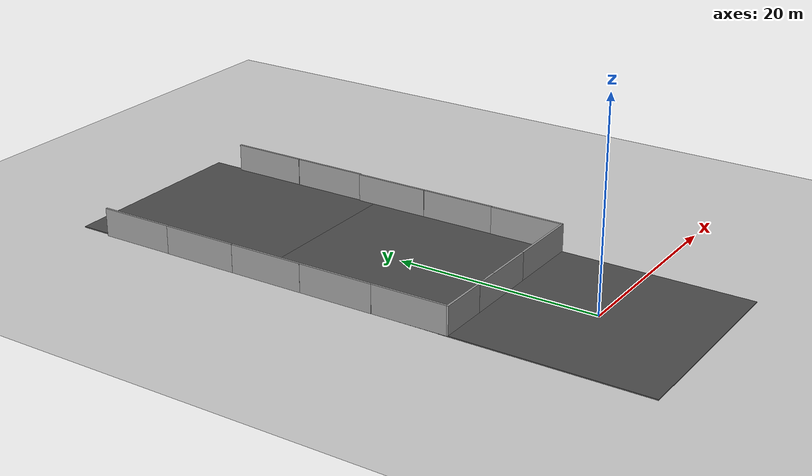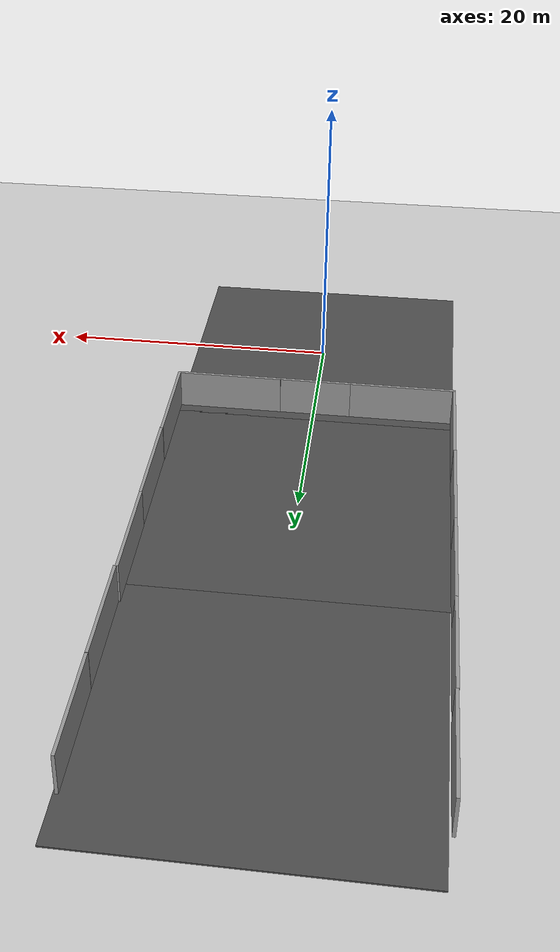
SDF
<sdf version="1.6">
 <world name="default">
  <light name="sun" type="directional">
   <pose>0 0 10 0 -0 0</pose>
   <diffuse>0.8 0.8 0.8 1</diffuse>
   <specular>0.2 0.2 0.2 1</specular>
   <attenuation>
    <range>1000</range>
    <constant>0.9</constant>
    <linear>0.01</linear>
    <quadratic>0.001</quadratic>
   </attenuation>
   <direction>-0.5 0.1 -0.9</direction>
  </light>
  <model name="ground_plane">
   <static>1</static>
   <link name="link">
    <collision name="collision">
     <geometry><plane><normal>0 0 1</normal><size>100 100</size></plane></geometry>
     <surface>
      <contact><collide_bitmask>65535</collide_bitmask></contact>
      <friction><ode><mu>100</mu><mu2>50</mu2></ode></friction>
     </surface>
    </collision>
    <visual name="visual">
     <cast_shadows>0</cast_shadows>
     <geometry><plane><normal>0 0 1</normal><size>100 100</size></plane></geometry>
     <material>
      <script><uri>file://media/materials/scripts/gazebo.material</uri><name>Gazebo/Grey</name></script>
     </material>
    </visual>
   </link>
  </model>
  <gravity>0 0 -9.8</gravity>
  <magnetic_field>6e-06 2.3e-05 -4.2e-05</magnetic_field>
  <atmosphere type="adiabatic"/>
  <physics name="default_physics" default="0" type="ode">
   <max_step_size>0.001</max_step_size>
   <real_time_factor>1</real_time_factor>
   <real_time_update_rate>1000</real_time_update_rate>
  </physics>
  <scene><ambient>0.4 0.4 0.4 1</ambient><background>0.7 0.7 0.7 1</background><shadows>1</shadows></scene>
  <spherical_coordinates>
   <surface_model>EARTH_WGS84</surface_model>
   <latitude_deg>0</latitude_deg>
   <longitude_deg>0</longitude_deg>
   <elevation>0</elevation>
   <heading_deg>0</heading_deg>
  </spherical_coordinates>
  <model name="asphalt_plane">
   <static>1</static>
   <link name="link">
    <collision name="collision"><geometry><box><size>20 20 0.1</size></box></geometry></collision>
    <visual name="visual">
     <cast_shadows>0</cast_shadows>
     <geometry><box><size>20 20 0.1</size></box></geometry>
     <material>
      <script>
       <uri>model://asphalt_plane/materials/scripts</uri>
       <uri>model://asphalt_plane/materials/textures</uri>
       <name>vrc/asphalt</name>
      </script>
     </material>
    </visual>
   </link>
   <pose>-0.120048 -0.200331 0 0 -0 0</pose>
  </model>
  <model name="asphalt_plane_0">
   <static>1</static>
   <link name="link">
    <collision name="collision"><geometry><box><size>20 20 0.1</size></box></geometry></collision>
    <visual name="visual">
     <cast_shadows>0</cast_shadows>
     <geometry><box><size>20 20 0.1</size></box></geometry>
     <material>
      <script>
       <uri>model://asphalt_plane/materials/scripts</uri>
       <uri>model://asphalt_plane/materials/textures</uri>
       <name>vrc/asphalt</name>
      </script>
     </material>
    </visual>
   </link>
   <pose>-0.092431 19.6929 0 0 -0 0</pose>
  </model>
  <model name="asphalt_plane_1">
   <static>1</static>
   <link name="link">
    <collision name="collision"><geometry><box><size>20 20 0.1</size></box></geometry></collision>
    <visual name="visual">
     <cast_shadows>0</cast_shadows>
     <geometry><box><size>20 20 0.1</size></box></geometry>
     <material>
      <script>
       <uri>model://asphalt_plane/materials/scripts</uri>
       <uri>model://asphalt_plane/materials/textures</uri>
       <name>vrc/asphalt</name>
      </script>
     </material>
    </visual>
   </link>
   <pose>-0.074798 39.6242 0 0 -0 0</pose>
  </model>
  <model name="grey_wall">
   <static>1</static>
   <link name="link">
    <pose>0 0 1.4 0 -0 0</pose>
    <collision name="collision"><geometry><box><size>7.5 0.2 2.8</size></box></geometry></collision>
    <visual name="visual">
     <cast_shadows>0</cast_shadows>
     <geometry><box><size>7.5 0.2 2.8</size></box></geometry>
     <material>
      <script>
       <uri>model://grey_wall/materials/scripts</uri>
       <uri>model://grey_wall/materials/textures</uri>
       <name>vrc/grey_wall</name>
      </script>
     </material>
    </visual>
   </link>
   <pose>6.19469 8.86607 0 0 -0 0</pose>
  </model>
  <model name="grey_wall_0">
   <static>1</static>
   <link name="link">
    <pose>0 0 1.4 0 -0 0</pose>
    <collision name="collision"><geometry><box><size>7.5 0.2 2.8</size></box></geometry></collision>
    <visual name="visual">
     <cast_shadows>0</cast_shadows>
     <geometry><box><size>7.5 0.2 2.8</size></box></geometry>
     <material>
      <script>
       <uri>model://grey_wall/materials/scripts</uri>
       <uri>model://grey_wall/materials/textures</uri>
       <name>vrc/grey_wall</name>
      </script>
     </material>
    </visual>
   </link>
   <pose>-1.31209 8.85435 0 0 -0 0</pose>
  </model>
  <model name="grey_wall_1">
   <static>1</static>
   <link name="link">
    <pose>0 0 1.4 0 -0 0</pose>
    <collision name="collision"><geometry><box><size>7.5 0.2 2.8</size></box></geometry></collision>
    <visual name="visual">
     <cast_shadows>0</cast_shadows>
     <geometry><box><size>7.5 0.2 2.8</size></box></geometry>
     <material>
      <script>
       <uri>model://grey_wall/materials/scripts</uri>
       <uri>model://grey_wall/materials/textures</uri>
       <name>vrc/grey_wall</name>
      </script>
     </material>
    </visual>
   </link>
   <pose>-6.37606 8.85882 0 0 -0 0</pose>
  </model>
  <model name="grey_wall_2">
   <static>1</static>
   <link name="link">
    <pose>0 0 1.4 0 -0 0</pose>
    <collision name="collision"><geometry><box><size>7.5 0.2 2.8</size></box></geometry></collision>
    <visual name="visual">
     <cast_shadows>0</cast_shadows>
     <geometry><box><size>7.5 0.2 2.8</size></box></geometry>
     <material>
      <script>
       <uri>model://grey_wall/materials/scripts</uri>
       <uri>model://grey_wall/materials/textures</uri>
       <name>vrc/grey_wall</name>
      </script>
     </material>
    </visual>
   </link>
   <pose>-10.0657 12.6862 0 0 0 -1.56314</pose>
  </model>
  <model name="grey_wall_2_clone">
   <static>1</static>
   <link name="link">
    <pose>0 0 1.4 0 -0 0</pose>
    <collision name="collision"><geometry><box><size>7.5 0.2 2.8</size></box></geometry></collision>
    <visual name="visual">
     <cast_shadows>0</cast_shadows>
     <geometry><box><size>7.5 0.2 2.8</size></box></geometry>
     <material>
      <script>
       <uri>model://grey_wall/materials/scripts</uri>
       <uri>model://grey_wall/materials/textures</uri>
       <name>vrc/grey_wall</name>
      </script>
     </material>
    </visual>
   </link>
   <pose>-10.1386 20.1593 0 0 0 -1.56314</pose>
  </model>
  <model name="grey_wall_2_clone_0">
   <static>1</static>
   <link name="link">
    <pose>0 0 1.4 0 -0 0</pose>
    <collision name="collision"><geometry><box><size>7.5 0.2 2.8</size></box></geometry></collision>
    <visual name="visual">
     <cast_shadows>0</cast_shadows>
     <geometry><box><size>7.5 0.2 2.8</size></box></geometry>
     <material>
      <script>
       <uri>model://grey_wall/materials/scripts</uri>
       <uri>model://grey_wall/materials/textures</uri>
       <name>vrc/grey_wall</name>
      </script>
     </material>
    </visual>
   </link>
   <pose>-10.2019 27.6489 0 0 0 -1.56314</pose>
  </model>
  <model name="grey_wall_2_clone_1">
   <static>1</static>
   <link name="link">
    <pose>0 0 1.4 0 -0 0</pose>
    <collision name="collision"><geometry><box><size>7.5 0.2 2.8</size></box></geometry></collision>
    <visual name="visual">
     <cast_shadows>0</cast_shadows>
     <geometry><box><size>7.5 0.2 2.8</size></box></geometry>
     <material>
      <script>
       <uri>model://grey_wall/materials/scripts</uri>
       <uri>model://grey_wall/materials/textures</uri>
       <name>vrc/grey_wall</name>
      </script>
     </material>
    </visual>
   </link>
   <pose>-10.2627 35.1317 0 0 0 -1.56314</pose>
  </model>
  <model name="grey_wall_2_clone_2">
   <static>1</static>
   <link name="link">
    <pose>0 0 1.4 0 -0 0</pose>
    <collision name="collision"><geometry><box><size>7.5 0.2 2.8</size></box></geometry></collision>
    <visual name="visual">
     <cast_shadows>0</cast_shadows>
     <geometry><box><size>7.5 0.2 2.8</size></box></geometry>
     <material>
      <script>
       <uri>model://grey_wall/materials/scripts</uri>
       <uri>model://grey_wall/materials/textures</uri>
       <name>vrc/grey_wall</name>
      </script>
     </material>
    </visual>
   </link>
   <pose>-10.2927 42.6132 0 0 0 -1.56314</pose>
  </model>
  <model name="grey_wall_2_clone_3">
   <static>1</static>
   <link name="link">
    <pose>0 0 1.4 0 -0 0</pose>
    <collision name="collision"><geometry><box><size>7.5 0.2 2.8</size></box></geometry></collision>
    <visual name="visual">
     <cast_shadows>0</cast_shadows>
     <geometry><box><size>7.5 0.2 2.8</size></box></geometry>
     <material>
      <script>
       <uri>model://grey_wall/materials/scripts</uri>
       <uri>model://grey_wall/materials/textures</uri>
       <name>vrc/grey_wall</name>
      </script>
     </material>
    </visual>
   </link>
   <pose>9.84334 12.577 0 0 0 -1.56314</pose>
  </model>
  <model name="grey_wall_2_clone_4">
   <static>1</static>
   <link name="link">
    <pose>0 0 1.4 0 -0 0</pose>
    <collision name="collision"><geometry><box><size>7.5 0.2 2.8</size></box></geometry></collision>
    <visual name="visual">
     <cast_shadows>0</cast_shadows>
     <geometry><box><size>7.5 0.2 2.8</size></box></geometry>
     <material>
      <script>
       <uri>model://grey_wall/materials/scripts</uri>
       <uri>model://grey_wall/materials/textures</uri>
       <name>vrc/grey_wall</name>
      </script>
     </material>
    </visual>
   </link>
   <pose>9.81437 20.0535 0 0 0 -1.56314</pose>
  </model>
  <model name="grey_wall_2_clone_5">
   <static>1</static>
   <link name="link">
    <pose>0 0 1.4 0 -0 0</pose>
    <collision name="collision"><geometry><box><size>7.5 0.2 2.8</size></box></geometry></collision>
    <visual name="visual">
     <cast_shadows>0</cast_shadows>
     <geometry><box><size>7.5 0.2 2.8</size></box></geometry>
     <material>
      <script>
       <uri>model://grey_wall/materials/scripts</uri>
       <uri>model://grey_wall/materials/textures</uri>
       <name>vrc/grey_wall</name>
      </script>
     </material>
    </visual>
   </link>
   <pose>9.74131 27.5827 0 0 0 -1.56314</pose>
  </model>
  <model name="grey_wall_2_clone_6">
   <static>1</static>
   <link name="link">
    <pose>0 0 1.4 0 -0 0</pose>
    <collision name="collision"><geometry><box><size>7.5 0.2 2.8</size></box></geometry></collision>
    <visual name="visual">
     <cast_shadows>0</cast_shadows>
     <geometry><box><size>7.5 0.2 2.8</size></box></geometry>
     <material>
      <script>
       <uri>model://grey_wall/materials/scripts</uri>
       <uri>model://grey_wall/materials/textures</uri>
       <name>vrc/grey_wall</name>
      </script>
     </material>
    </visual>
   </link>
   <pose>9.79316 35.0509 0 0 0 -1.56314</pose>
  </model>
  <model name="grey_wall_2_clone_7">
   <static>1</static>
   <link name="link">
    <pose>0 0 1.4 0 -0 0</pose>
    <collision name="collision"><geometry><box><size>7.5 0.2 2.8</size></box></geometry></collision>
    <visual name="visual">
     <cast_shadows>0</cast_shadows>
     <geometry><box><size>7.5 0.2 2.8</size></box></geometry>
     <material>
      <script>
       <uri>model://grey_wall/materials/scripts</uri>
       <uri>model://grey_wall/materials/textures</uri>
       <name>vrc/grey_wall</name>
      </script>
     </material>
    </visual>
   </link>
   <pose>9.73835 42.5833 0 0 0 -1.56314</pose>
  </model>
 </world>
</sdf>
